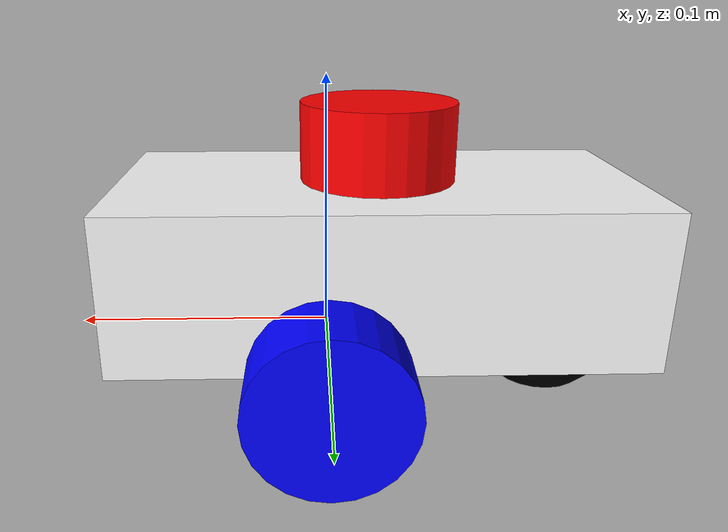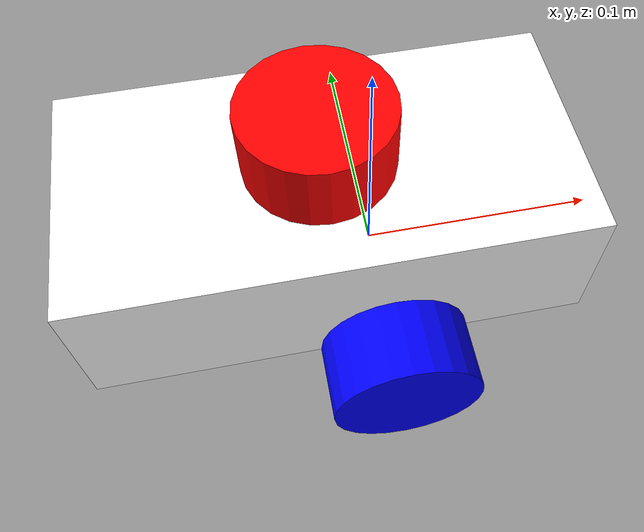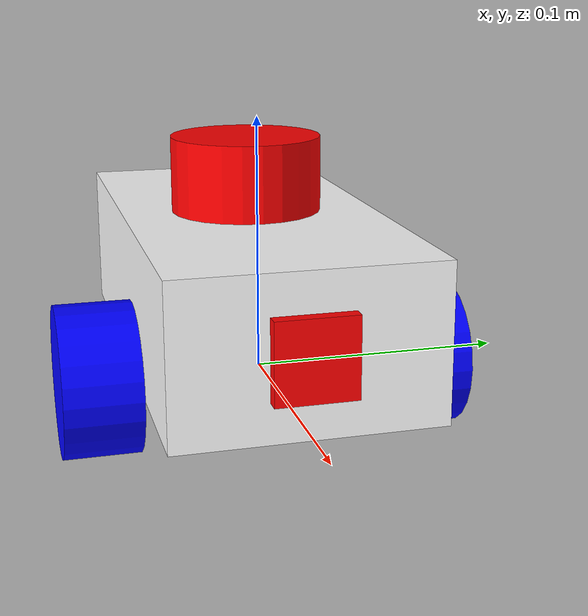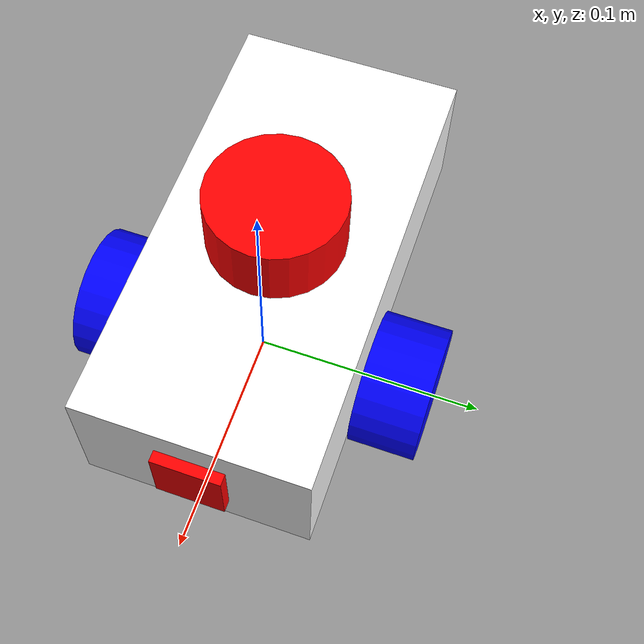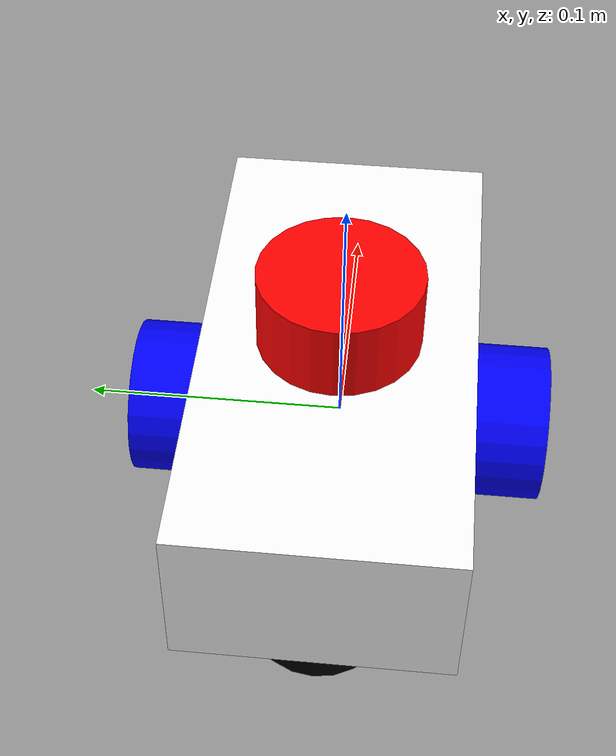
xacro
<?xml version="1.0"?>
<robot xmlns:xacro="http://www.ros.org/wiki/xacro" name="urdf_tutorial">

    <!-- MACROS -->
    <xacro:include filename="macros.xacro"/>

    <!-- COLOR -->
    <material name="white">
        <color rgba="1 1 1 1" />
    </material>

    <material name="blue">
        <color rgba="0 0 1 1"/>
    </material>

    <material name="black">
        <color rgba="0 0 0 1"/>
    </material>

    <material name="red">
        <color rgba="1 0 0 1"/>
    </material>

    <!-- BASE LINK -->
    <link name="base_link">
    </link>

    <!-- BODY LINK -->
    <joint name="body_joint" type="fixed">
        <parent link="base_link"/>
        <child link="body"/>
        <origin xyz="-0.12 0 0"/>
    </joint>

    <link name="body">
        <visual>
            <origin xyz="0.1 0 0.03"/>
            <geometry>
                <box size="0.2 0.1 0.06"/>
            </geometry>
            <material name="white"/>
        </visual>
        <collision>
            <origin xyz="0.1 0 0.03"/>
            <geometry>
                <box size="0.2 0.1 0.06"/>
            </geometry>
        </collision>
        <xacro:inertial_box mass="0.5" x="0.2" y="0.1" z="0.06">
            <origin xyz="0.1 0 0.03" rpy="0 0 0"/>
        </xacro:inertial_box>
    </link>

    <gazebo reference="body">
        <material>Gazebo/White</material>
    </gazebo>

    <!-- LEFT WHEEL LINK -->
    <joint name="left_wheel_joint" type="continuous">
        <parent link="base_link"/>
        <child link="left_wheel"/>
        <origin xyz="0 0.065 0" rpy="-${pi/2} 0 0" />
        <axis xyz="0 0 1"/>
    </joint>

    <link name="left_wheel">
        <visual>
            <geometry>
                <cylinder radius="0.03" length="0.03"/>
            </geometry>
            <material name="blue"/>
        </visual>
        <collision>
            <geometry>
                <cylinder radius="0.03" length="0.03"/>
            </geometry>
        </collision>
        <xacro:inertial_cylinder mass="0.1" length="0.03" radius="0.03">
            <origin xyz="0 0 0" rpy="0 0 0"/>
        </xacro:inertial_cylinder>
    </link>

    <gazebo reference="left_wheel">
        <material>Gazebo/Black</material>
    </gazebo>

    <!-- RIGHT WHEEL LINK -->
    <joint name="right_wheel_joint" type="continuous">
        <parent link="base_link"/>
        <child link="right_wheel"/>
        <origin xyz="0 -0.065 0" rpy="${pi/2} 0 0" />
        <axis xyz="0 0 -1"/>
    </joint>

    <link name="right_wheel">
        <visual>
            <geometry>
                <cylinder radius="0.03" length="0.03"/>
            </geometry>
            <material name="blue"/>
        </visual>
        <collision>
            <geometry>
                <cylinder radius="0.03" length="0.03"/>
            </geometry>
        </collision>
        <xacro:inertial_cylinder mass="0.1" length="0.03" radius="0.03">
            <origin xyz="0 0 0" rpy="0 0 0"/>
        </xacro:inertial_cylinder>
    </link>

    <gazebo reference="right_wheel">
        <material>Gazebo/Black</material>
    </gazebo>

    <!-- CASTER WHEEL LINK -->
    <joint name="caster_wheel_joint" type="fixed">
        <parent link="body"/>
        <child link="caster_wheel"/>
        <origin xyz="0.03 0 0"/>
    </joint>

    <link name="caster_wheel">
        <visual>
            <geometry>
                <sphere radius="0.03"/>
            </geometry>
            <material name="black"/>
        </visual>
        <collision>
            <geometry>
                <sphere radius="0.03"/>
            </geometry>
        </collision>
        <xacro:inertial_sphere mass="0.1" radius="0.03">
            <origin xyz="0 0 0" rpy="0 0 0"/>
        </xacro:inertial_sphere>
    </link>

    <gazebo reference="caster_wheel">
        <material>Gazebo/Blue</material>

        <mu1 value="0.001"/>
        <mu2 value="0.001"/>
    </gazebo>

    <!-- LiDAR -->
    <joint name="laser_joint" type="fixed">
        <parent link="body"/>
        <child link="laser_frame"/>
        <origin xyz="0.1 0 0.075" rpy="0 0 0"/>
    </joint>

    <link name="laser_frame">
        <visual>
            <geometry>
                <cylinder radius="0.03" length="0.03"/>
            </geometry>
            <material name="red"/>
        </visual>
        <collision>
            <geometry>
                <cylinder radius="0.03" length="0.03"/>
            </geometry>
        </collision>
    </link>

    <!-- CAMERA -->
    <joint name="camera_joint" type="fixed">
        <parent link="body"/>
        <child link="camera_link"/>
        <origin xyz="0.20 0 0.03" rpy="0 0 0"/>
    </joint>

    <link name="camera_link">
        <visual>
            <geometry>
                <box size="0.01 0.03 0.03"/>
            </geometry>
            <material name="red"/>
        </visual>
        <collision>
            <geometry>
                <box size="0.01 0.03 0.03"/>
            </geometry>
        </collision>
    </link>

    <joint name="camera_optical_joint" type="fixed">
        <parent link="camera_link"/>
        <child link="camera_link_optical"/>
        <origin xyz="0 0 0" rpy="${-pi/2} 0 ${-pi/2}"/>
    </joint>

    <link name="camera_link_optical">
    </link>

    <!-- GAZEBO -->
    <xacro:include filename="gazebo.xacro"/>
    <xacro:include filename="lidar.xacro"/>
    <xacro:include filename="depth.xacro"/>

</robot>

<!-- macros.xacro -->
<robot xmlns:xacro="http://www.ros.org/wiki/xacro" >

    <!-- Specify some standard inertial calculations https://en.wikipedia.org/wiki/List_of_moments_of_inertia -->
    <!-- These make use of xacro's mathematical functionality -->

    <xacro:macro name="inertial_sphere" params="mass radius *origin">
        <inertial>
            <xacro:insert_block name="origin"/>
            <mass value="${mass}" />
            <inertia ixx="${(2/5) * mass * (radius*radius)}" ixy="0.0" ixz="0.0"
                    iyy="${(2/5) * mass * (radius*radius)}" iyz="0.0"
                    izz="${(2/5) * mass * (radius*radius)}" />
        </inertial>
    </xacro:macro>

    <xacro:macro name="inertial_box" params="mass x y z *origin">
        <inertial>
            <xacro:insert_block name="origin"/>
            <mass value="${mass}" />
            <inertia ixx="${(1/12) * mass * (y*y+z*z)}" ixy="0.0" ixz="0.0"
                    iyy="${(1/12) * mass * (x*x+z*z)}" iyz="0.0"
                    izz="${(1/12) * mass * (x*x+y*y)}" />
        </inertial>
    </xacro:macro>

    <xacro:macro name="inertial_cylinder" params="mass length radius *origin">
        <inertial>
            <xacro:insert_block name="origin"/>
            <mass value="${mass}" />
            <inertia ixx="${(1/12) * mass * (3*radius*radius + length*length)}" ixy="0.0" ixz="0.0"
                    iyy="${(1/12) * mass * (3*radius*radius + length*length)}" iyz="0.0"
                    izz="${(1/2) * mass * (radius*radius)}" />
        </inertial>
    </xacro:macro>

</robot>
